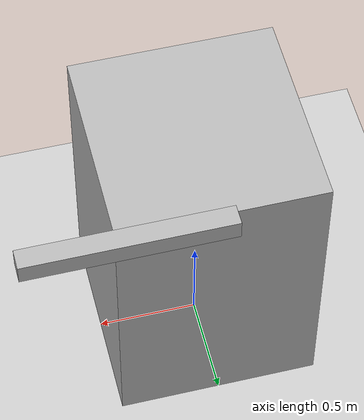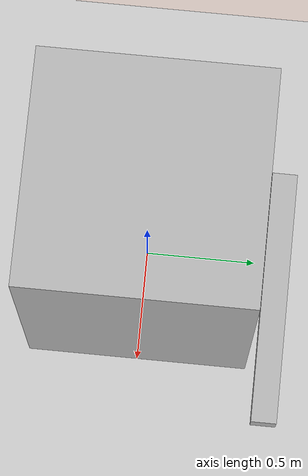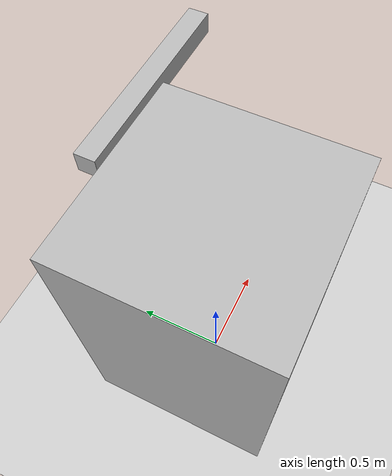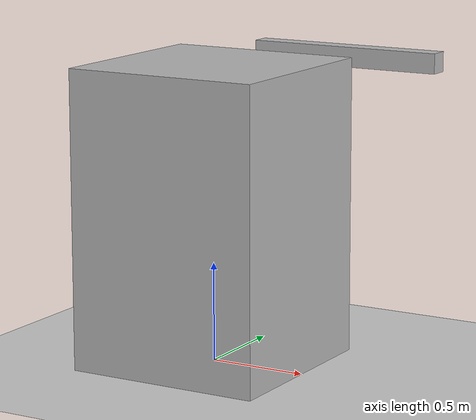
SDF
<?xml version="1.0" ?>
<sdf version="1.7">

    <world name="sar_world">
        <physics name="1ms" type="ignored">
            <max_step_size>0.001</max_step_size>
            <real_time_factor>1.0</real_time_factor>
        </physics>
        <plugin
            filename="ignition-gazebo-physics-system"
            name="ignition::gazebo::systems::Physics">
        </plugin>
        <plugin
            filename="ignition-gazebo-user-commands-system"
            name="ignition::gazebo::systems::UserCommands">
        </plugin>
        <plugin
            filename="ignition-gazebo-scene-broadcaster-system"
            name="ignition::gazebo::systems::SceneBroadcaster">
        </plugin>

        <!-- Other world elements -->
        <gui fullscreen="0">

            <!-- 3D scene -->
            <plugin filename="GzScene3D" name="3D View">
                <ignition-gui>
                <title>3D View</title>
                <property type="bool" key="showTitleBar">false</property>
                <property type="string" key="state">docked</property>
                </ignition-gui>

                <engine>ogre2</engine>
                <scene>scene</scene>
                <ambient_light>0.4 0.4 0.4</ambient_light>
                <background_color>0.8 0.8 0.8</background_color>
            </plugin>

            <!-- KeyPublisher plugin-->
            <plugin filename="KeyPublisher" name="Key Publisher"/>

            <!-- World control -->
            <plugin filename="WorldControl" name="World control">
                <ignition-gui>
                <title>World control</title>
                <property type="bool" key="showTitleBar">false</property>
                <property type="bool" key="resizable">false</property>
                <property type="double" key="height">72</property>
                <property type="double" key="width">121</property>
                <property type="double" key="z">1</property>

                <property type="string" key="state">floating</property>
                <anchors target="3D View">
                    <line own="left" target="left"/>
                    <line own="bottom" target="bottom"/>
                </anchors>
                </ignition-gui>

                <play_pause>true</play_pause>
                <step>true</step>
                <start_paused>true</start_paused>
                <service>/world/car_world/control</service>
                <stats_topic>/world/car_world/stats</stats_topic>
            </plugin>

            <!-- World statistics -->
            <plugin filename="WorldStats" name="World stats">
                <ignition-gui>
                <title>World stats</title>
                <property type="bool" key="showTitleBar">false</property>
                <property type="bool" key="resizable">false</property>
                <property type="double" key="height">110</property>
                <property type="double" key="width">290</property>
                <property type="double" key="z">1</property>

                <property type="string" key="state">floating</property>
                <anchors target="3D View">
                    <line own="right" target="right"/>
                    <line own="bottom" target="bottom"/>
                </anchors>
                </ignition-gui>

                <sim_time>true</sim_time>
                <real_time>true</real_time>
                <real_time_factor>true</real_time_factor>
                <iterations>true</iterations>
                <topic>/world/car_world/stats</topic>

            </plugin>

            <!-- Entity tree -->
            <plugin filename="EntityTree" name="Entity tree">
            </plugin>

        </gui>

        <light type="directional" name="sun">
            <cast_shadows>true</cast_shadows>
            <pose>0 0 10 0 0 0</pose>
            <diffuse>0.8 0.8 0.8 1</diffuse>
            <specular>0.2 0.2 0.2 1</specular>
            <attenuation>
                <range>1000</range>
                <constant>0.9</constant>
                <linear>0.01</linear>
                <quadratic>0.001</quadratic>
            </attenuation>
            <direction>-0.5 0.1 -0.9</direction>
        </light>

        <model name="ground_plane">
            <static>true</static>
            <link name="link">
                <collision name="collision">
                <geometry>
                    <plane>
                    <normal>0 0 1</normal>
                    </plane>
                </geometry>
                </collision>
                <visual name="visual">
                <geometry>
                    <plane>
                    <normal>0 0 1</normal>
                    <size>4 4</size>
                    </plane>
                </geometry>
                <material>
                    <ambient>0.8 0.8 0.8 1</ambient>
                    <diffuse>0.8 0.8 0.8 1</diffuse>
                    <specular>0.8 0.8 0.8 1</specular>
                </material>
                </visual>
            </link>
        </model>

        <model name="two_link_robot" canonical_link='link2'>
            <link name="link1">
                <pose>0.45 0.55 1.5 0 0 0</pose>
                <inertial>
                    <mass>1.0</mass>
                    <inertia>
                        <ixx>0.01</ixx> <ixy>0.0</ixy> <ixz>0.0</ixz>
                        <iyy>0.01</iyy> <iyz>0.0</iyz>
                        <izz>0.01</izz>
                    </inertia>
                </inertial>
                <collision name="collision">
                    <geometry>
                        <box>
                            <size>1 0.1 0.1</size>
                        </box>
                    </geometry>
                </collision>
                <visual name="visual">
                    <geometry>
                        <box>
                            <size>1 0.1 0.1</size>
                        </box>
                    </geometry>
                </visual>
            </link>
            <link name="link2">
                <pose>0 0 0.75 0 0 0</pose>
                <inertial>
                    <mass>100.0</mass>
                    <inertia>
                        <ixx>0.01</ixx> <ixy>0.0</ixy> <ixz>0.0</ixz>
                        <iyy>0.01</iyy> <iyz>0.0</iyz>
                        <izz>0.01</izz>
                    </inertia>
                </inertial>
                <collision name="collision">
                    <geometry>
                        <box>
                            <size>1 1 1.5</size>
                        </box>
                    </geometry>
                </collision>
                <visual name="visual">
                    <geometry>
                        <box>
                            <size>1 1 1.5</size>
                        </box>
                    </geometry>
                </visual>
            </link>
            <joint name="joint1" type="revolute">
                <pose>-0.5 1 0 0 0 0</pose>
                <parent>link2</parent>
                <child>link1</child>
                <axis>
                    <xyz expressed_in='__model__'>0 1 0</xyz>
                    <limit>
                        <lower>-3.14</lower>    <!--negative infinity -1.79769e+308-->
                        <upper>3.14</upper>     <!--positive infinity 1.79769e+308-->
                    </limit>
                </axis>
            </joint>

            <plugin filename="/home/dlee/ros2_ws/install/sar_gazebo/lib/libJointController.so"
            name="ignition::gazebo::systems::JointController">
                <joint_name>joint1</joint_name>
                <initial_velocity>5.0</initial_velocity>
                <use_force_commands>false</use_force_commands>
            </plugin>

        </model>

    <!-- Moving Forward-->
    <plugin filename="libignition-gazebo-triggered-publisher-system.so"
            name="ignition::gazebo::systems::TriggeredPublisher">
        <input type="ignition.msgs.Int32" topic="/keyboard/keypress">
            <match field="data">16777235</match>
        </input>
        <output type="ignition.msgs.Twist" topic="/cmd_vel">
            linear: {x: 0.5}, angular: {z: 0.0}
        </output>
    </plugin>
    <!-- Moving Backward-->
    <plugin filename="libignition-gazebo-triggered-publisher-system.so"
            name="ignition::gazebo::systems::TriggeredPublisher">
        <input type="ignition.msgs.Int32" topic="/keyboard/keypress">
            <match field="data">16777237</match>
        </input>
        <output type="ignition.msgs.Twist" topic="/cmd_vel">
            linear: {x: -0.5}, angular: {z: 0.0}
        </output>
    </plugin>
        <!-- Moving Leftward-->
    <plugin filename="libignition-gazebo-triggered-publisher-system.so"
            name="ignition::gazebo::systems::TriggeredPublisher">
        <input type="ignition.msgs.Int32" topic="/keyboard/keypress">
            <match field="data">16777234</match>
        </input>
        <output type="ignition.msgs.Twist" topic="/cmd_vel">
            linear: {x: 0.0}, angular: {z: 0.5}
        </output>
    </plugin>
        <!-- Moving Rightward-->
    <plugin filename="libignition-gazebo-triggered-publisher-system.so"
            name="ignition::gazebo::systems::TriggeredPublisher">
        <input type="ignition.msgs.Int32" topic="/keyboard/keypress">
            <match field="data">16777236</match>
        </input>
        <output type="ignition.msgs.Twist" topic="/cmd_vel">
            linear: {x: 0.0}, angular: {z: -0.5}
        </output>
    </plugin>

    </world>
</sdf>
